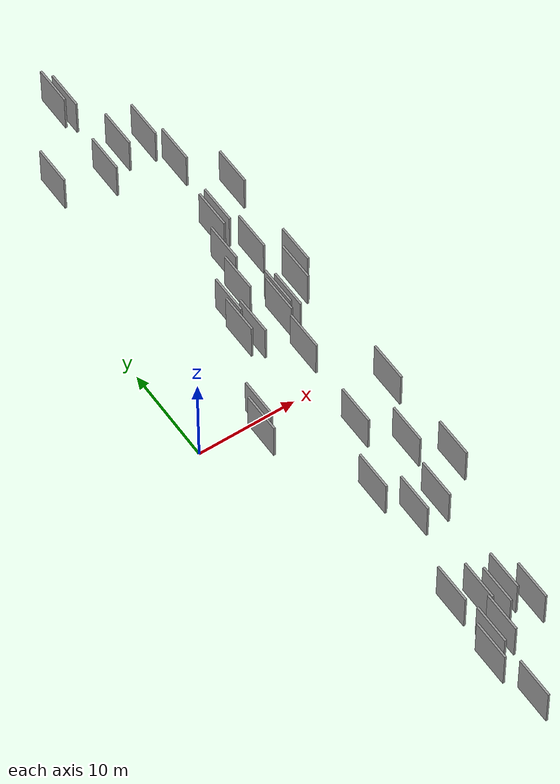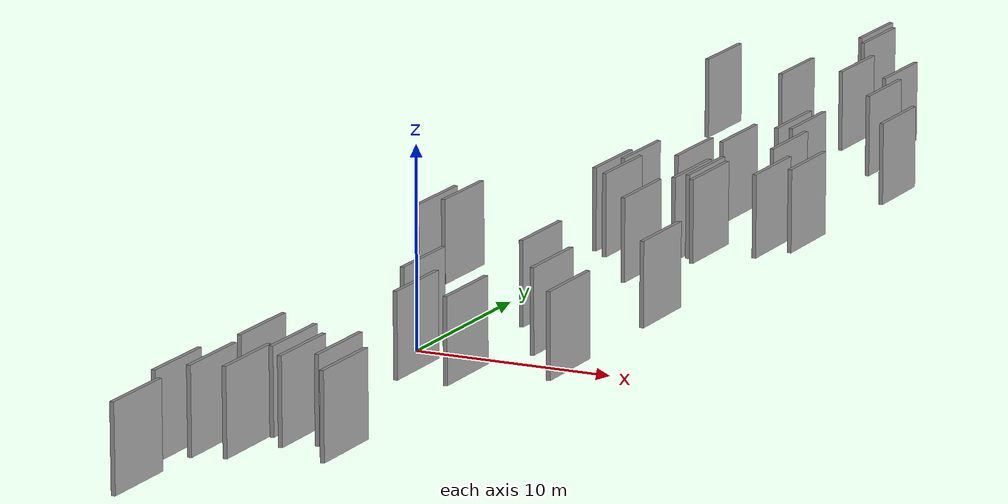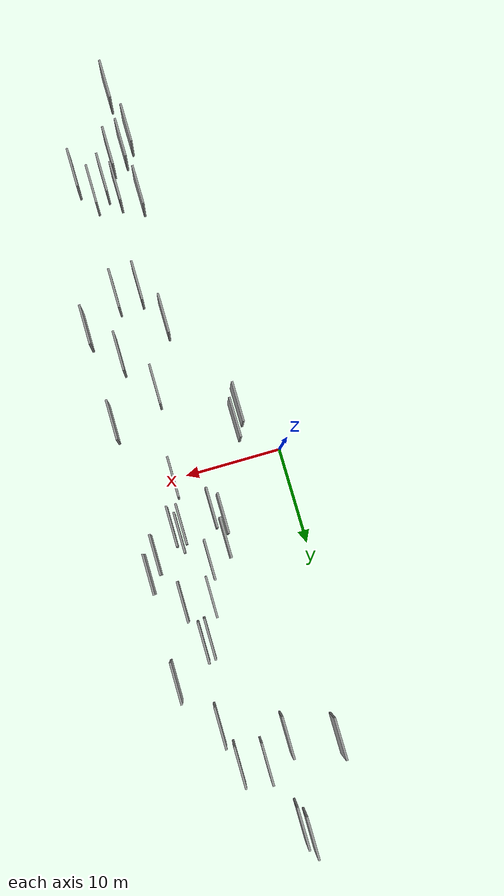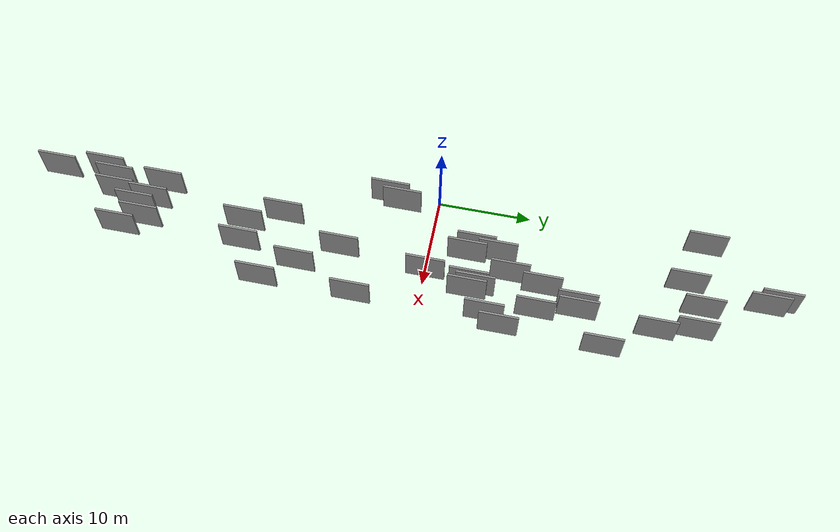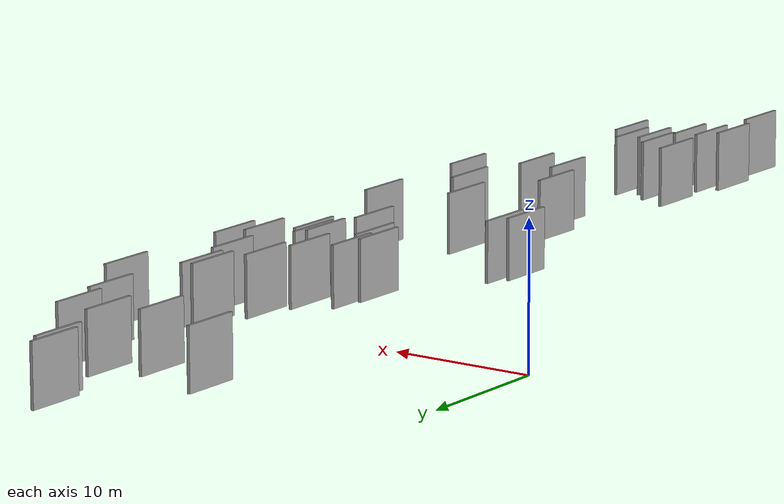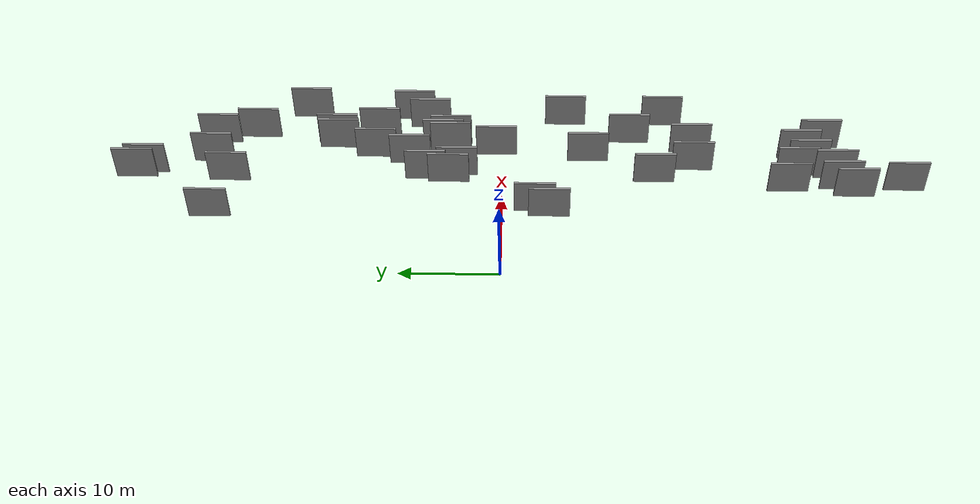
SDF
<sdf version="1.6">
 <world name="default">
  <scene>
   <sky><clouds><speed>12</speed></clouds></sky>
   <ambient>0.4 0.4 0.4 1</ambient>
   <background>0.7 0.7 0.7 1</background>
   <shadows>1</shadows>
  </scene>
  <gravity>0 0 -9.8066</gravity>
  <magnetic_field>6e-06 2.3e-05 -4.2e-05</magnetic_field>
  <physics default="0" name="default_physics" type="ode">
   <ode>
    <solver>
     <type>quick</type>
     <iters>10</iters>
     <sor>1.0</sor>
     <use_dynamic_moi_rescaling>0</use_dynamic_moi_rescaling>
    </solver>
    <constraints>
     <cfm>0</cfm>
     <erp>0.2</erp>
     <contact_max_correcting_vel>100</contact_max_correcting_vel>
     <contact_surface_layer>0.001</contact_surface_layer>
    </constraints>
   </ode>
   <max_step_size>0.004</max_step_size>
   <real_time_factor>1</real_time_factor>
   <real_time_update_rate>250</real_time_update_rate>
  </physics>
  <light name="sun" type="directional">
   <pose>0 0 10 0 0 0</pose>
   <diffuse>0.8 0.8 0.8 1</diffuse>
   <specular>0.2 0.2 0.2 1</specular>
   <attenuation>
    <range>1000</range>
    <constant>0.9</constant>
    <linear>0.01</linear>
    <quadratic>0.001</quadratic>
   </attenuation>
   <direction>-0.5 0.1 -0.9</direction>
  </light>
  <model name="grey_wall_1">
   <static>1</static>
   <pose>12.6795 27.9832 5.0 0.000000 0.000000 1.570796</pose>
   <link name="link">
    <pose>0 0 2.00 0 0 0</pose>
    <collision name="collision"><geometry><box><size>4.00 0.2 4.00</size></box></geometry></collision>
    <visual name="visual">
     <cast_shadows>0</cast_shadows>
     <geometry><box><size>4.00 0.2 4.00</size></box></geometry>
     <material>
      <script>
       <uri>model://grey_wall/materials/scripts</uri>
       <uri>model://grey_wall/materials/textures</uri>
       <name>vrc/grey_wall</name>
      </script>
     </material>
    </visual>
   </link>
  </model>
  <model name="grey_wall_2">
   <static>1</static>
   <pose>10.1720 28.4027 5.0 0.000000 0.000000 1.570796</pose>
   <link name="link">
    <pose>0 0 2.00 0 0 0</pose>
    <collision name="collision"><geometry><box><size>4.00 0.2 4.00</size></box></geometry></collision>
    <visual name="visual">
     <cast_shadows>0</cast_shadows>
     <geometry><box><size>4.00 0.2 4.00</size></box></geometry>
     <material>
      <script>
       <uri>model://grey_wall/materials/scripts</uri>
       <uri>model://grey_wall/materials/textures</uri>
       <name>vrc/grey_wall</name>
      </script>
     </material>
    </visual>
   </link>
  </model>
  <model name="grey_wall_3">
   <static>1</static>
   <pose>9.5162 -18.8121 5.0 0.000000 0.000000 1.570796</pose>
   <link name="link">
    <pose>0 0 2.00 0 0 0</pose>
    <collision name="collision"><geometry><box><size>4.00 0.2 4.00</size></box></geometry></collision>
    <visual name="visual">
     <cast_shadows>0</cast_shadows>
     <geometry><box><size>4.00 0.2 4.00</size></box></geometry>
     <material>
      <script>
       <uri>model://grey_wall/materials/scripts</uri>
       <uri>model://grey_wall/materials/textures</uri>
       <name>vrc/grey_wall</name>
      </script>
     </material>
    </visual>
   </link>
  </model>
  <model name="grey_wall_4">
   <static>1</static>
   <pose>11.8128 5.0187 5.0 0.000000 0.000000 1.570796</pose>
   <link name="link">
    <pose>0 0 2.00 0 0 0</pose>
    <collision name="collision"><geometry><box><size>4.00 0.2 4.00</size></box></geometry></collision>
    <visual name="visual">
     <cast_shadows>0</cast_shadows>
     <geometry><box><size>4.00 0.2 4.00</size></box></geometry>
     <material>
      <script>
       <uri>model://grey_wall/materials/scripts</uri>
       <uri>model://grey_wall/materials/textures</uri>
       <name>vrc/grey_wall</name>
      </script>
     </material>
    </visual>
   </link>
  </model>
  <model name="grey_wall_5">
   <static>1</static>
   <pose>10.5762 -8.5351 5.0 0.000000 0.000000 1.570796</pose>
   <link name="link">
    <pose>0 0 2.00 0 0 0</pose>
    <collision name="collision"><geometry><box><size>4.00 0.2 4.00</size></box></geometry></collision>
    <visual name="visual">
     <cast_shadows>0</cast_shadows>
     <geometry><box><size>4.00 0.2 4.00</size></box></geometry>
     <material>
      <script>
       <uri>model://grey_wall/materials/scripts</uri>
       <uri>model://grey_wall/materials/textures</uri>
       <name>vrc/grey_wall</name>
      </script>
     </material>
    </visual>
   </link>
  </model>
  <model name="grey_wall_6">
   <static>1</static>
   <pose>8.8865 -29.0302 5.0 0.000000 0.000000 1.570796</pose>
   <link name="link">
    <pose>0 0 2.00 0 0 0</pose>
    <collision name="collision"><geometry><box><size>4.00 0.2 4.00</size></box></geometry></collision>
    <visual name="visual">
     <cast_shadows>0</cast_shadows>
     <geometry><box><size>4.00 0.2 4.00</size></box></geometry>
     <material>
      <script>
       <uri>model://grey_wall/materials/scripts</uri>
       <uri>model://grey_wall/materials/textures</uri>
       <name>vrc/grey_wall</name>
      </script>
     </material>
    </visual>
   </link>
  </model>
  <model name="grey_wall_7">
   <static>1</static>
   <pose>7.0905 -39.4141 5.0 0.000000 0.000000 1.570796</pose>
   <link name="link">
    <pose>0 0 2.00 0 0 0</pose>
    <collision name="collision"><geometry><box><size>4.00 0.2 4.00</size></box></geometry></collision>
    <visual name="visual">
     <cast_shadows>0</cast_shadows>
     <geometry><box><size>4.00 0.2 4.00</size></box></geometry>
     <material>
      <script>
       <uri>model://grey_wall/materials/scripts</uri>
       <uri>model://grey_wall/materials/textures</uri>
       <name>vrc/grey_wall</name>
      </script>
     </material>
    </visual>
   </link>
  </model>
  <model name="grey_wall_8">
   <static>1</static>
   <pose>16.0578 8.7407 5.0 0.000000 0.000000 1.570796</pose>
   <link name="link">
    <pose>0 0 2.00 0 0 0</pose>
    <collision name="collision"><geometry><box><size>4.00 0.2 4.00</size></box></geometry></collision>
    <visual name="visual">
     <cast_shadows>0</cast_shadows>
     <geometry><box><size>4.00 0.2 4.00</size></box></geometry>
     <material>
      <script>
       <uri>model://grey_wall/materials/scripts</uri>
       <uri>model://grey_wall/materials/textures</uri>
       <name>vrc/grey_wall</name>
      </script>
     </material>
    </visual>
   </link>
  </model>
  <model name="grey_wall_9">
   <static>1</static>
   <pose>15.4858 -6.3340 5.0 0.000000 0.000000 1.570796</pose>
   <link name="link">
    <pose>0 0 2.00 0 0 0</pose>
    <collision name="collision"><geometry><box><size>4.00 0.2 4.00</size></box></geometry></collision>
    <visual name="visual">
     <cast_shadows>0</cast_shadows>
     <geometry><box><size>4.00 0.2 4.00</size></box></geometry>
     <material>
      <script>
       <uri>model://grey_wall/materials/scripts</uri>
       <uri>model://grey_wall/materials/textures</uri>
       <name>vrc/grey_wall</name>
      </script>
     </material>
    </visual>
   </link>
  </model>
  <model name="grey_wall_10">
   <static>1</static>
   <pose>8.6025 4.3147 5.0 0.000000 0.000000 1.570796</pose>
   <link name="link">
    <pose>0 0 2.00 0 0 0</pose>
    <collision name="collision"><geometry><box><size>4.00 0.2 4.00</size></box></geometry></collision>
    <visual name="visual">
     <cast_shadows>0</cast_shadows>
     <geometry><box><size>4.00 0.2 4.00</size></box></geometry>
     <material>
      <script>
       <uri>model://grey_wall/materials/scripts</uri>
       <uri>model://grey_wall/materials/textures</uri>
       <name>vrc/grey_wall</name>
      </script>
     </material>
    </visual>
   </link>
  </model>
  <model name="grey_wall_11">
   <static>1</static>
   <pose>11.3476 0.5023 5.0 0.000000 0.000000 1.570796</pose>
   <link name="link">
    <pose>0 0 2.00 0 0 0</pose>
    <collision name="collision"><geometry><box><size>4.00 0.2 4.00</size></box></geometry></collision>
    <visual name="visual">
     <cast_shadows>0</cast_shadows>
     <geometry><box><size>4.00 0.2 4.00</size></box></geometry>
     <material>
      <script>
       <uri>model://grey_wall/materials/scripts</uri>
       <uri>model://grey_wall/materials/textures</uri>
       <name>vrc/grey_wall</name>
      </script>
     </material>
    </visual>
   </link>
  </model>
  <model name="grey_wall_12">
   <static>1</static>
   <pose>11.2209 -29.3743 5.0 0.000000 0.000000 1.570796</pose>
   <link name="link">
    <pose>0 0 2.00 0 0 0</pose>
    <collision name="collision"><geometry><box><size>4.00 0.2 4.00</size></box></geometry></collision>
    <visual name="visual">
     <cast_shadows>0</cast_shadows>
     <geometry><box><size>4.00 0.2 4.00</size></box></geometry>
     <material>
      <script>
       <uri>model://grey_wall/materials/scripts</uri>
       <uri>model://grey_wall/materials/textures</uri>
       <name>vrc/grey_wall</name>
      </script>
     </material>
    </visual>
   </link>
  </model>
  <model name="grey_wall_13">
   <static>1</static>
   <pose>13.6624 12.0915 5.0 0.000000 0.000000 1.570796</pose>
   <link name="link">
    <pose>0 0 2.00 0 0 0</pose>
    <collision name="collision"><geometry><box><size>4.00 0.2 4.00</size></box></geometry></collision>
    <visual name="visual">
     <cast_shadows>0</cast_shadows>
     <geometry><box><size>4.00 0.2 4.00</size></box></geometry>
     <material>
      <script>
       <uri>model://grey_wall/materials/scripts</uri>
       <uri>model://grey_wall/materials/textures</uri>
       <name>vrc/grey_wall</name>
      </script>
     </material>
    </visual>
   </link>
  </model>
  <model name="grey_wall_14">
   <static>1</static>
   <pose>7.9153 -14.9923 5.0 0.000000 0.000000 1.570796</pose>
   <link name="link">
    <pose>0 0 2.00 0 0 0</pose>
    <collision name="collision"><geometry><box><size>4.00 0.2 4.00</size></box></geometry></collision>
    <visual name="visual">
     <cast_shadows>0</cast_shadows>
     <geometry><box><size>4.00 0.2 4.00</size></box></geometry>
     <material>
      <script>
       <uri>model://grey_wall/materials/scripts</uri>
       <uri>model://grey_wall/materials/textures</uri>
       <name>vrc/grey_wall</name>
      </script>
     </material>
    </visual>
   </link>
  </model>
  <model name="grey_wall_15">
   <static>1</static>
   <pose>6.8395 -28.0375 5.0 0.000000 0.000000 1.570796</pose>
   <link name="link">
    <pose>0 0 2.00 0 0 0</pose>
    <collision name="collision"><geometry><box><size>4.00 0.2 4.00</size></box></geometry></collision>
    <visual name="visual">
     <cast_shadows>0</cast_shadows>
     <geometry><box><size>4.00 0.2 4.00</size></box></geometry>
     <material>
      <script>
       <uri>model://grey_wall/materials/scripts</uri>
       <uri>model://grey_wall/materials/textures</uri>
       <name>vrc/grey_wall</name>
      </script>
     </material>
    </visual>
   </link>
  </model>
  <model name="grey_wall_16">
   <static>1</static>
   <pose>7.6808 26.6427 5.0 0.000000 0.000000 1.570796</pose>
   <link name="link">
    <pose>0 0 2.00 0 0 0</pose>
    <collision name="collision"><geometry><box><size>4.00 0.2 4.00</size></box></geometry></collision>
    <visual name="visual">
     <cast_shadows>0</cast_shadows>
     <geometry><box><size>4.00 0.2 4.00</size></box></geometry>
     <material>
      <script>
       <uri>model://grey_wall/materials/scripts</uri>
       <uri>model://grey_wall/materials/textures</uri>
       <name>vrc/grey_wall</name>
      </script>
     </material>
    </visual>
   </link>
  </model>
  <model name="grey_wall_17">
   <static>1</static>
   <pose>6.2701 -34.4607 5.0 0.000000 0.000000 1.570796</pose>
   <link name="link">
    <pose>0 0 2.00 0 0 0</pose>
    <collision name="collision"><geometry><box><size>4.00 0.2 4.00</size></box></geometry></collision>
    <visual name="visual">
     <cast_shadows>0</cast_shadows>
     <geometry><box><size>4.00 0.2 4.00</size></box></geometry>
     <material>
      <script>
       <uri>model://grey_wall/materials/scripts</uri>
       <uri>model://grey_wall/materials/textures</uri>
       <name>vrc/grey_wall</name>
      </script>
     </material>
    </visual>
   </link>
  </model>
  <model name="grey_wall_18">
   <static>1</static>
   <pose>9.9262 -30.2279 5.0 0.000000 0.000000 1.570796</pose>
   <link name="link">
    <pose>0 0 2.00 0 0 0</pose>
    <collision name="collision"><geometry><box><size>4.00 0.2 4.00</size></box></geometry></collision>
    <visual name="visual">
     <cast_shadows>0</cast_shadows>
     <geometry><box><size>4.00 0.2 4.00</size></box></geometry>
     <material>
      <script>
       <uri>model://grey_wall/materials/scripts</uri>
       <uri>model://grey_wall/materials/textures</uri>
       <name>vrc/grey_wall</name>
      </script>
     </material>
    </visual>
   </link>
  </model>
  <model name="grey_wall_19">
   <static>1</static>
   <pose>8.6367 -32.7029 5.0 0.000000 0.000000 1.570796</pose>
   <link name="link">
    <pose>0 0 2.00 0 0 0</pose>
    <collision name="collision"><geometry><box><size>4.00 0.2 4.00</size></box></geometry></collision>
    <visual name="visual">
     <cast_shadows>0</cast_shadows>
     <geometry><box><size>4.00 0.2 4.00</size></box></geometry>
     <material>
      <script>
       <uri>model://grey_wall/materials/scripts</uri>
       <uri>model://grey_wall/materials/textures</uri>
       <name>vrc/grey_wall</name>
      </script>
     </material>
    </visual>
   </link>
  </model>
  <model name="grey_wall_20">
   <static>1</static>
   <pose>13.0877 -12.6126 5.0 0.000000 0.000000 1.570796</pose>
   <link name="link">
    <pose>0 0 2.00 0 0 0</pose>
    <collision name="collision"><geometry><box><size>4.00 0.2 4.00</size></box></geometry></collision>
    <visual name="visual">
     <cast_shadows>0</cast_shadows>
     <geometry><box><size>4.00 0.2 4.00</size></box></geometry>
     <material>
      <script>
       <uri>model://grey_wall/materials/scripts</uri>
       <uri>model://grey_wall/materials/textures</uri>
       <name>vrc/grey_wall</name>
      </script>
     </material>
    </visual>
   </link>
  </model>
  <model name="grey_wall_21">
   <static>1</static>
   <pose>10.9283 12.3610 5.0 0.000000 0.000000 1.570796</pose>
   <link name="link">
    <pose>0 0 2.00 0 0 0</pose>
    <collision name="collision"><geometry><box><size>4.00 0.2 4.00</size></box></geometry></collision>
    <visual name="visual">
     <cast_shadows>0</cast_shadows>
     <geometry><box><size>4.00 0.2 4.00</size></box></geometry>
     <material>
      <script>
       <uri>model://grey_wall/materials/scripts</uri>
       <uri>model://grey_wall/materials/textures</uri>
       <name>vrc/grey_wall</name>
      </script>
     </material>
    </visual>
   </link>
  </model>
  <model name="grey_wall_22">
   <static>1</static>
   <pose>12.1350 16.0685 5.0 0.000000 0.000000 1.570796</pose>
   <link name="link">
    <pose>0 0 2.00 0 0 0</pose>
    <collision name="collision"><geometry><box><size>4.00 0.2 4.00</size></box></geometry></collision>
    <visual name="visual">
     <cast_shadows>0</cast_shadows>
     <geometry><box><size>4.00 0.2 4.00</size></box></geometry>
     <material>
      <script>
       <uri>model://grey_wall/materials/scripts</uri>
       <uri>model://grey_wall/materials/textures</uri>
       <name>vrc/grey_wall</name>
      </script>
     </material>
    </visual>
   </link>
  </model>
  <model name="grey_wall_23">
   <static>1</static>
   <pose>7.2155 -33.1629 5.0 0.000000 0.000000 1.570796</pose>
   <link name="link">
    <pose>0 0 2.00 0 0 0</pose>
    <collision name="collision"><geometry><box><size>4.00 0.2 4.00</size></box></geometry></collision>
    <visual name="visual">
     <cast_shadows>0</cast_shadows>
     <geometry><box><size>4.00 0.2 4.00</size></box></geometry>
     <material>
      <script>
       <uri>model://grey_wall/materials/scripts</uri>
       <uri>model://grey_wall/materials/textures</uri>
       <name>vrc/grey_wall</name>
      </script>
     </material>
    </visual>
   </link>
  </model>
  <model name="grey_wall_24">
   <static>1</static>
   <pose>11.8681 -18.6852 5.0 0.000000 0.000000 1.570796</pose>
   <link name="link">
    <pose>0 0 2.00 0 0 0</pose>
    <collision name="collision"><geometry><box><size>4.00 0.2 4.00</size></box></geometry></collision>
    <visual name="visual">
     <cast_shadows>0</cast_shadows>
     <geometry><box><size>4.00 0.2 4.00</size></box></geometry>
     <material>
      <script>
       <uri>model://grey_wall/materials/scripts</uri>
       <uri>model://grey_wall/materials/textures</uri>
       <name>vrc/grey_wall</name>
      </script>
     </material>
    </visual>
   </link>
  </model>
  <model name="grey_wall_25">
   <static>1</static>
   <pose>15.5195 -15.9785 5.0 0.000000 0.000000 1.570796</pose>
   <link name="link">
    <pose>0 0 2.00 0 0 0</pose>
    <collision name="collision"><geometry><box><size>4.00 0.2 4.00</size></box></geometry></collision>
    <visual name="visual">
     <cast_shadows>0</cast_shadows>
     <geometry><box><size>4.00 0.2 4.00</size></box></geometry>
     <material>
      <script>
       <uri>model://grey_wall/materials/scripts</uri>
       <uri>model://grey_wall/materials/textures</uri>
       <name>vrc/grey_wall</name>
      </script>
     </material>
    </visual>
   </link>
  </model>
  <model name="grey_wall_26">
   <static>1</static>
   <pose>8.1082 7.3878 5.0 0.000000 0.000000 1.570796</pose>
   <link name="link">
    <pose>0 0 2.00 0 0 0</pose>
    <collision name="collision"><geometry><box><size>4.00 0.2 4.00</size></box></geometry></collision>
    <visual name="visual">
     <cast_shadows>0</cast_shadows>
     <geometry><box><size>4.00 0.2 4.00</size></box></geometry>
     <material>
      <script>
       <uri>model://grey_wall/materials/scripts</uri>
       <uri>model://grey_wall/materials/textures</uri>
       <name>vrc/grey_wall</name>
      </script>
     </material>
    </visual>
   </link>
  </model>
  <model name="grey_wall_27">
   <static>1</static>
   <pose>16.2976 19.0983 5.0 0.000000 0.000000 1.570796</pose>
   <link name="link">
    <pose>0 0 2.00 0 0 0</pose>
    <collision name="collision"><geometry><box><size>4.00 0.2 4.00</size></box></geometry></collision>
    <visual name="visual">
     <cast_shadows>0</cast_shadows>
     <geometry><box><size>4.00 0.2 4.00</size></box></geometry>
     <material>
      <script>
       <uri>model://grey_wall/materials/scripts</uri>
       <uri>model://grey_wall/materials/textures</uri>
       <name>vrc/grey_wall</name>
      </script>
     </material>
    </visual>
   </link>
  </model>
  <model name="grey_wall_28">
   <static>1</static>
   <pose>3.0625 28.0589 5.0 0.000000 0.000000 1.570796</pose>
   <link name="link">
    <pose>0 0 2.00 0 0 0</pose>
    <collision name="collision"><geometry><box><size>4.00 0.2 4.00</size></box></geometry></collision>
    <visual name="visual">
     <cast_shadows>0</cast_shadows>
     <geometry><box><size>4.00 0.2 4.00</size></box></geometry>
     <material>
      <script>
       <uri>model://grey_wall/materials/scripts</uri>
       <uri>model://grey_wall/materials/textures</uri>
       <name>vrc/grey_wall</name>
      </script>
     </material>
    </visual>
   </link>
  </model>
  <model name="grey_wall_29">
   <static>1</static>
   <pose>12.7380 4.9946 5.0 0.000000 0.000000 1.570796</pose>
   <link name="link">
    <pose>0 0 2.00 0 0 0</pose>
    <collision name="collision"><geometry><box><size>4.00 0.2 4.00</size></box></geometry></collision>
    <visual name="visual">
     <cast_shadows>0</cast_shadows>
     <geometry><box><size>4.00 0.2 4.00</size></box></geometry>
     <material>
      <script>
       <uri>model://grey_wall/materials/scripts</uri>
       <uri>model://grey_wall/materials/textures</uri>
       <name>vrc/grey_wall</name>
      </script>
     </material>
    </visual>
   </link>
  </model>
  <model name="grey_wall_30">
   <static>1</static>
   <pose>4.0825 -3.3359 5.0 0.000000 0.000000 1.570796</pose>
   <link name="link">
    <pose>0 0 2.00 0 0 0</pose>
    <collision name="collision"><geometry><box><size>4.00 0.2 4.00</size></box></geometry></collision>
    <visual name="visual">
     <cast_shadows>0</cast_shadows>
     <geometry><box><size>4.00 0.2 4.00</size></box></geometry>
     <material>
      <script>
       <uri>model://grey_wall/materials/scripts</uri>
       <uri>model://grey_wall/materials/textures</uri>
       <name>vrc/grey_wall</name>
      </script>
     </material>
    </visual>
   </link>
  </model>
  <model name="grey_wall_31">
   <static>1</static>
   <pose>12.2007 5.7563 5.0 0.000000 0.000000 1.570796</pose>
   <link name="link">
    <pose>0 0 2.00 0 0 0</pose>
    <collision name="collision"><geometry><box><size>4.00 0.2 4.00</size></box></geometry></collision>
    <visual name="visual">
     <cast_shadows>0</cast_shadows>
     <geometry><box><size>4.00 0.2 4.00</size></box></geometry>
     <material>
      <script>
       <uri>model://grey_wall/materials/scripts</uri>
       <uri>model://grey_wall/materials/textures</uri>
       <name>vrc/grey_wall</name>
      </script>
     </material>
    </visual>
   </link>
  </model>
  <model name="grey_wall_32">
   <static>1</static>
   <pose>8.6295 34.7761 5.0 0.000000 0.000000 1.570796</pose>
   <link name="link">
    <pose>0 0 2.00 0 0 0</pose>
    <collision name="collision"><geometry><box><size>4.00 0.2 4.00</size></box></geometry></collision>
    <visual name="visual">
     <cast_shadows>0</cast_shadows>
     <geometry><box><size>4.00 0.2 4.00</size></box></geometry>
     <material>
      <script>
       <uri>model://grey_wall/materials/scripts</uri>
       <uri>model://grey_wall/materials/textures</uri>
       <name>vrc/grey_wall</name>
      </script>
     </material>
    </visual>
   </link>
  </model>
  <model name="grey_wall_33">
   <static>1</static>
   <pose>8.0475 35.8171 5.0 0.000000 0.000000 1.570796</pose>
   <link name="link">
    <pose>0 0 2.00 0 0 0</pose>
    <collision name="collision"><geometry><box><size>4.00 0.2 4.00</size></box></geometry></collision>
    <visual name="visual">
     <cast_shadows>0</cast_shadows>
     <geometry><box><size>4.00 0.2 4.00</size></box></geometry>
     <material>
      <script>
       <uri>model://grey_wall/materials/scripts</uri>
       <uri>model://grey_wall/materials/textures</uri>
       <name>vrc/grey_wall</name>
      </script>
     </material>
    </visual>
   </link>
  </model>
  <model name="grey_wall_34">
   <static>1</static>
   <pose>3.4217 -4.7123 5.0 0.000000 0.000000 1.570796</pose>
   <link name="link">
    <pose>0 0 2.00 0 0 0</pose>
    <collision name="collision"><geometry><box><size>4.00 0.2 4.00</size></box></geometry></collision>
    <visual name="visual">
     <cast_shadows>0</cast_shadows>
     <geometry><box><size>4.00 0.2 4.00</size></box></geometry>
     <material>
      <script>
       <uri>model://grey_wall/materials/scripts</uri>
       <uri>model://grey_wall/materials/textures</uri>
       <name>vrc/grey_wall</name>
      </script>
     </material>
    </visual>
   </link>
  </model>
  <model name="grey_wall_35">
   <static>1</static>
   <pose>12.8099 16.2394 5.0 0.000000 0.000000 1.570796</pose>
   <link name="link">
    <pose>0 0 2.00 0 0 0</pose>
    <collision name="collision"><geometry><box><size>4.00 0.2 4.00</size></box></geometry></collision>
    <visual name="visual">
     <cast_shadows>0</cast_shadows>
     <geometry><box><size>4.00 0.2 4.00</size></box></geometry>
     <material>
      <script>
       <uri>model://grey_wall/materials/scripts</uri>
       <uri>model://grey_wall/materials/textures</uri>
       <name>vrc/grey_wall</name>
      </script>
     </material>
    </visual>
   </link>
  </model>
  <model name="grey_wall_36">
   <static>1</static>
   <pose>10.1423 8.9795 5.0 0.000000 0.000000 1.570796</pose>
   <link name="link">
    <pose>0 0 2.00 0 0 0</pose>
    <collision name="collision"><geometry><box><size>4.00 0.2 4.00</size></box></geometry></collision>
    <visual name="visual">
     <cast_shadows>0</cast_shadows>
     <geometry><box><size>4.00 0.2 4.00</size></box></geometry>
     <material>
      <script>
       <uri>model://grey_wall/materials/scripts</uri>
       <uri>model://grey_wall/materials/textures</uri>
       <name>vrc/grey_wall</name>
      </script>
     </material>
    </visual>
   </link>
  </model>
  <model name="grey_wall_37">
   <static>1</static>
   <pose>13.4492 24.1148 5.0 0.000000 0.000000 1.570796</pose>
   <link name="link">
    <pose>0 0 2.00 0 0 0</pose>
    <collision name="collision"><geometry><box><size>4.00 0.2 4.00</size></box></geometry></collision>
    <visual name="visual">
     <cast_shadows>0</cast_shadows>
     <geometry><box><size>4.00 0.2 4.00</size></box></geometry>
     <material>
      <script>
       <uri>model://grey_wall/materials/scripts</uri>
       <uri>model://grey_wall/materials/textures</uri>
       <name>vrc/grey_wall</name>
      </script>
     </material>
    </visual>
   </link>
  </model>
  <model name="grey_wall_38">
   <static>1</static>
   <pose>7.7141 5.1274 5.0 0.000000 0.000000 1.570796</pose>
   <link name="link">
    <pose>0 0 2.00 0 0 0</pose>
    <collision name="collision"><geometry><box><size>4.00 0.2 4.00</size></box></geometry></collision>
    <visual name="visual">
     <cast_shadows>0</cast_shadows>
     <geometry><box><size>4.00 0.2 4.00</size></box></geometry>
     <material>
      <script>
       <uri>model://grey_wall/materials/scripts</uri>
       <uri>model://grey_wall/materials/textures</uri>
       <name>vrc/grey_wall</name>
      </script>
     </material>
    </visual>
   </link>
  </model>
  <model name="grey_wall_39">
   <static>1</static>
   <pose>14.9737 7.1327 5.0 0.000000 0.000000 1.570796</pose>
   <link name="link">
    <pose>0 0 2.00 0 0 0</pose>
    <collision name="collision"><geometry><box><size>4.00 0.2 4.00</size></box></geometry></collision>
    <visual name="visual">
     <cast_shadows>0</cast_shadows>
     <geometry><box><size>4.00 0.2 4.00</size></box></geometry>
     <material>
      <script>
       <uri>model://grey_wall/materials/scripts</uri>
       <uri>model://grey_wall/materials/textures</uri>
       <name>vrc/grey_wall</name>
      </script>
     </material>
    </visual>
   </link>
  </model>
  <model name="grey_wall_40">
   <static>1</static>
   <pose>12.5732 -31.4929 5.0 0.000000 0.000000 1.570796</pose>
   <link name="link">
    <pose>0 0 2.00 0 0 0</pose>
    <collision name="collision"><geometry><box><size>4.00 0.2 4.00</size></box></geometry></collision>
    <visual name="visual">
     <cast_shadows>0</cast_shadows>
     <geometry><box><size>4.00 0.2 4.00</size></box></geometry>
     <material>
      <script>
       <uri>model://grey_wall/materials/scripts</uri>
       <uri>model://grey_wall/materials/textures</uri>
       <name>vrc/grey_wall</name>
      </script>
     </material>
    </visual>
   </link>
  </model>
 </world>
</sdf>
